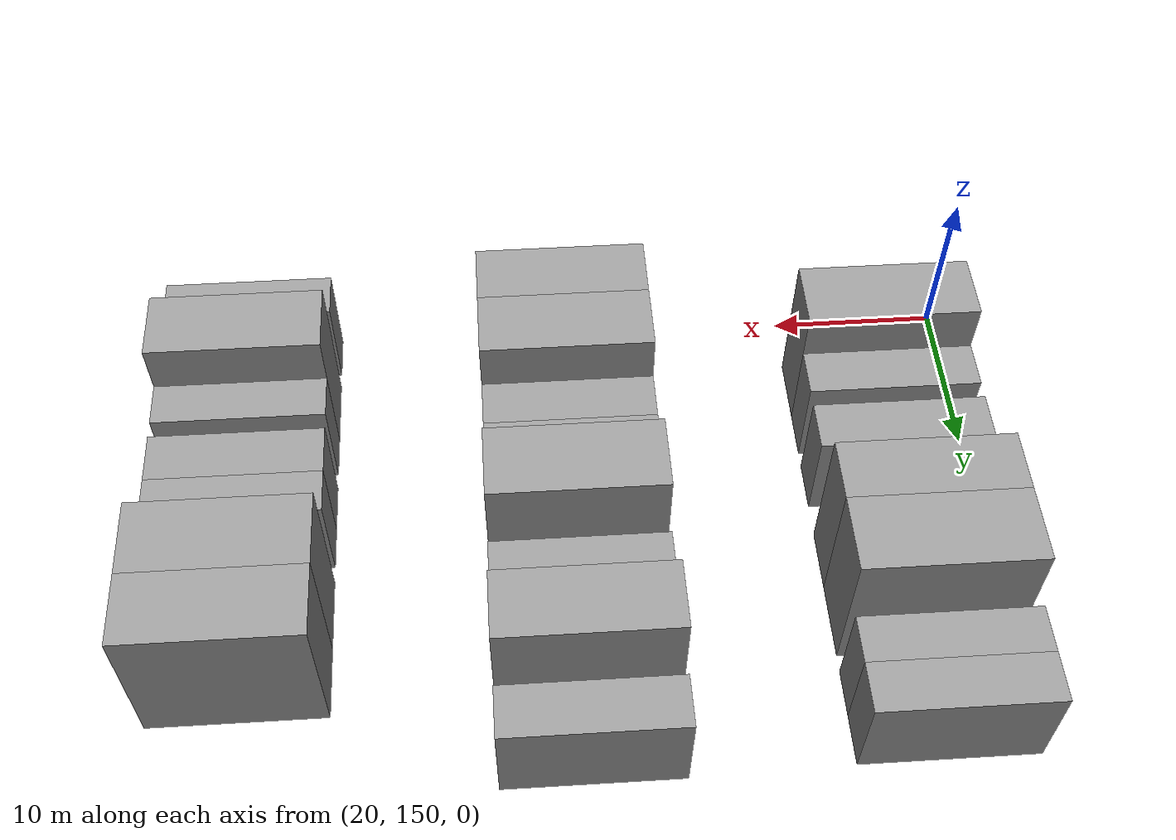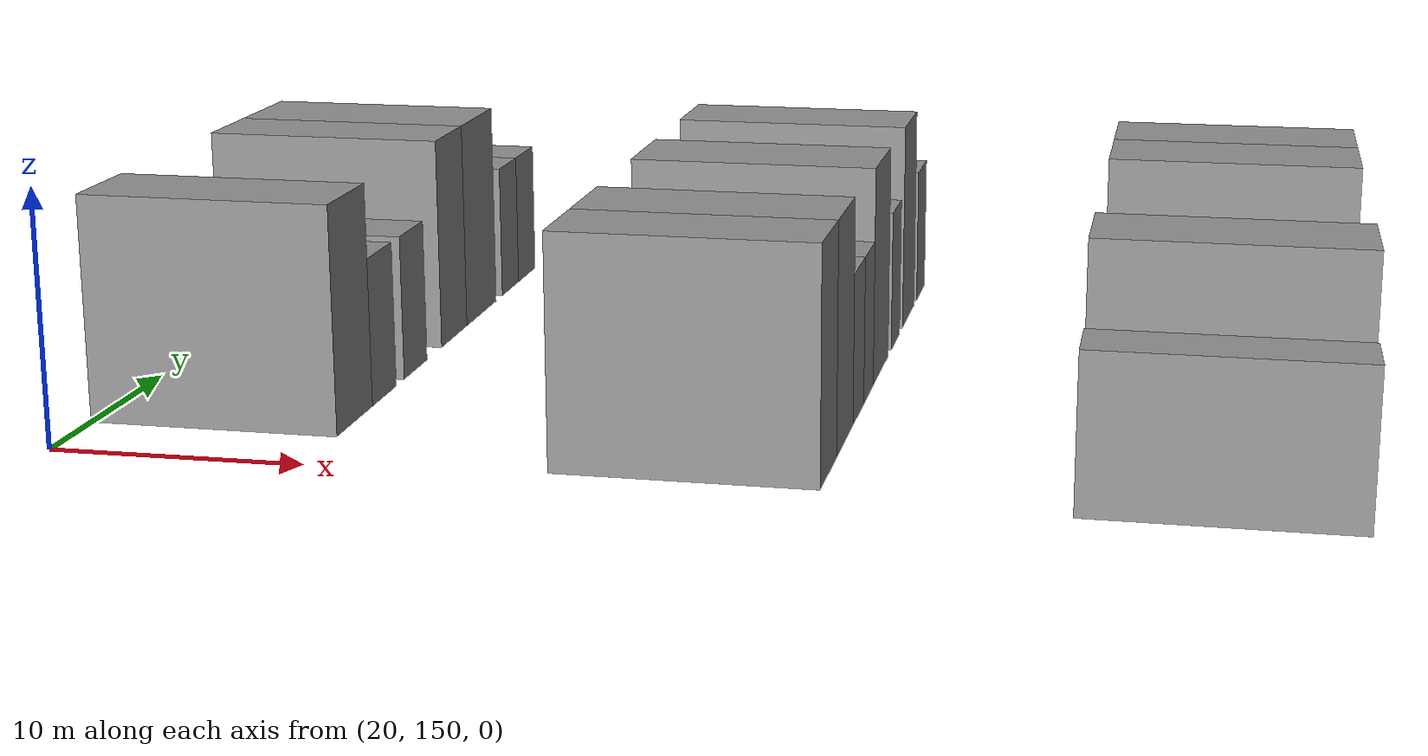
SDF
<sdf version="1.6">
 <world name="default">
  <model name="building_103">
   <static>1</static>
   <pose>25.0000 155.4526 0 0.000000 0.000000 0.000000</pose>
   <link name="link">
    <pose>0 0 4.50 0 0 0</pose>
    <collision name="collision"><geometry><box><size>10.0000 4.0135 9.0000</size></box></geometry></collision>
    <visual name="visual">
     <cast_shadows>0</cast_shadows>
     <geometry><box><size>10.0000 4.0135 9.0000</size></box></geometry>
     <material>
      <script>
       <uri>model://grey_wall/materials/scripts</uri>
       <uri>model://grey_wall/materials/textures</uri>
       <name>vrc/grey_wall</name>
      </script>
     </material>
    </visual>
   </link>
  </model>
  <model name="building_104">
   <static>1</static>
   <pose>25.0000 158.8937 0 0.000000 0.000000 0.000000</pose>
   <link name="link">
    <pose>0 0 3.00 0 0 0</pose>
    <collision name="collision"><geometry><box><size>10.0000 2.8687 6.0000</size></box></geometry></collision>
    <visual name="visual">
     <cast_shadows>0</cast_shadows>
     <geometry><box><size>10.0000 2.8687 6.0000</size></box></geometry>
     <material>
      <script>
       <uri>model://grey_wall/materials/scripts</uri>
       <uri>model://grey_wall/materials/textures</uri>
       <name>vrc/grey_wall</name>
      </script>
     </material>
    </visual>
   </link>
  </model>
  <model name="building_105">
   <static>1</static>
   <pose>25.0000 162.8089 0 0.000000 0.000000 0.000000</pose>
   <link name="link">
    <pose>0 0 3.00 0 0 0</pose>
    <collision name="collision"><geometry><box><size>10.0000 2.9617 6.0000</size></box></geometry></collision>
    <visual name="visual">
     <cast_shadows>0</cast_shadows>
     <geometry><box><size>10.0000 2.9617 6.0000</size></box></geometry>
     <material>
      <script>
       <uri>model://grey_wall/materials/scripts</uri>
       <uri>model://grey_wall/materials/textures</uri>
       <name>vrc/grey_wall</name>
      </script>
     </material>
    </visual>
   </link>
  </model>
  <model name="building_106">
   <static>1</static>
   <pose>25.0000 168.0981 0 0.000000 0.000000 0.000000</pose>
   <link name="link">
    <pose>0 0 4.50 0 0 0</pose>
    <collision name="collision"><geometry><box><size>10.0000 3.6167 9.0000</size></box></geometry></collision>
    <visual name="visual">
     <cast_shadows>0</cast_shadows>
     <geometry><box><size>10.0000 3.6167 9.0000</size></box></geometry>
     <material>
      <script>
       <uri>model://grey_wall/materials/scripts</uri>
       <uri>model://grey_wall/materials/textures</uri>
       <name>vrc/grey_wall</name>
      </script>
     </material>
    </visual>
   </link>
  </model>
  <model name="building_107">
   <static>1</static>
   <pose>25.0000 172.1519 0 0.000000 0.000000 0.000000</pose>
   <link name="link">
    <pose>0 0 4.50 0 0 0</pose>
    <collision name="collision"><geometry><box><size>10.0000 4.4907 9.0000</size></box></geometry></collision>
    <visual name="visual">
     <cast_shadows>0</cast_shadows>
     <geometry><box><size>10.0000 4.4907 9.0000</size></box></geometry>
     <material>
      <script>
       <uri>model://grey_wall/materials/scripts</uri>
       <uri>model://grey_wall/materials/textures</uri>
       <name>vrc/grey_wall</name>
      </script>
     </material>
    </visual>
   </link>
  </model>
  <model name="building_108">
   <static>1</static>
   <pose>25.0000 176.7450 0 0.000000 0.000000 0.000000</pose>
   <link name="link">
    <pose>0 0 3.00 0 0 0</pose>
    <collision name="collision"><geometry><box><size>10.0000 2.6954 6.0000</size></box></geometry></collision>
    <visual name="visual">
     <cast_shadows>0</cast_shadows>
     <geometry><box><size>10.0000 2.6954 6.0000</size></box></geometry>
     <material>
      <script>
       <uri>model://grey_wall/materials/scripts</uri>
       <uri>model://grey_wall/materials/textures</uri>
       <name>vrc/grey_wall</name>
      </script>
     </material>
    </visual>
   </link>
  </model>
  <model name="building_109">
   <static>1</static>
   <pose>25.0000 179.5265 0 0.000000 0.000000 0.000000</pose>
   <link name="link">
    <pose>0 0 3.00 0 0 0</pose>
    <collision name="collision"><geometry><box><size>10.0000 2.8677 6.0000</size></box></geometry></collision>
    <visual name="visual">
     <cast_shadows>0</cast_shadows>
     <geometry><box><size>10.0000 2.8677 6.0000</size></box></geometry>
     <material>
      <script>
       <uri>model://grey_wall/materials/scripts</uri>
       <uri>model://grey_wall/materials/textures</uri>
       <name>vrc/grey_wall</name>
      </script>
     </material>
    </visual>
   </link>
  </model>
  <model name="building_221">
   <static>1</static>
   <pose>44.0000 152.6465 0 0.000000 0.000000 0.000000</pose>
   <link name="link">
    <pose>0 0 4.50 0 0 0</pose>
    <collision name="collision"><geometry><box><size>10.0000 3.7224 9.0000</size></box></geometry></collision>
    <visual name="visual">
     <cast_shadows>0</cast_shadows>
     <geometry><box><size>10.0000 3.7224 9.0000</size></box></geometry>
     <material>
      <script>
       <uri>model://grey_wall/materials/scripts</uri>
       <uri>model://grey_wall/materials/textures</uri>
       <name>vrc/grey_wall</name>
      </script>
     </material>
    </visual>
   </link>
  </model>
  <model name="building_222">
   <static>1</static>
   <pose>44.0000 156.5366 0 0.000000 0.000000 0.000000</pose>
   <link name="link">
    <pose>0 0 4.50 0 0 0</pose>
    <collision name="collision"><geometry><box><size>10.0000 4.0577 9.0000</size></box></geometry></collision>
    <visual name="visual">
     <cast_shadows>0</cast_shadows>
     <geometry><box><size>10.0000 4.0577 9.0000</size></box></geometry>
     <material>
      <script>
       <uri>model://grey_wall/materials/scripts</uri>
       <uri>model://grey_wall/materials/textures</uri>
       <name>vrc/grey_wall</name>
      </script>
     </material>
    </visual>
   </link>
  </model>
  <model name="building_223">
   <static>1</static>
   <pose>44.0000 159.9938 0 0.000000 0.000000 0.000000</pose>
   <link name="link">
    <pose>0 0 3.00 0 0 0</pose>
    <collision name="collision"><geometry><box><size>10.0000 2.8568 6.0000</size></box></geometry></collision>
    <visual name="visual">
     <cast_shadows>0</cast_shadows>
     <geometry><box><size>10.0000 2.8568 6.0000</size></box></geometry>
     <material>
      <script>
       <uri>model://grey_wall/materials/scripts</uri>
       <uri>model://grey_wall/materials/textures</uri>
       <name>vrc/grey_wall</name>
      </script>
     </material>
    </visual>
   </link>
  </model>
  <model name="building_224">
   <static>1</static>
   <pose>44.0000 162.7529 0 0.000000 0.000000 0.000000</pose>
   <link name="link">
    <pose>0 0 3.00 0 0 0</pose>
    <collision name="collision"><geometry><box><size>10.0000 2.6615 6.0000</size></box></geometry></collision>
    <visual name="visual">
     <cast_shadows>0</cast_shadows>
     <geometry><box><size>10.0000 2.6615 6.0000</size></box></geometry>
     <material>
      <script>
       <uri>model://grey_wall/materials/scripts</uri>
       <uri>model://grey_wall/materials/textures</uri>
       <name>vrc/grey_wall</name>
      </script>
     </material>
    </visual>
   </link>
  </model>
  <model name="building_225">
   <static>1</static>
   <pose>44.0000 166.2893 0 0.000000 0.000000 0.000000</pose>
   <link name="link">
    <pose>0 0 4.50 0 0 0</pose>
    <collision name="collision"><geometry><box><size>10.0000 4.4113 9.0000</size></box></geometry></collision>
    <visual name="visual">
     <cast_shadows>0</cast_shadows>
     <geometry><box><size>10.0000 4.4113 9.0000</size></box></geometry>
     <material>
      <script>
       <uri>model://grey_wall/materials/scripts</uri>
       <uri>model://grey_wall/materials/textures</uri>
       <name>vrc/grey_wall</name>
      </script>
     </material>
    </visual>
   </link>
  </model>
  <model name="building_226">
   <static>1</static>
   <pose>44.0000 170.8499 0 0.000000 0.000000 0.000000</pose>
   <link name="link">
    <pose>0 0 3.00 0 0 0</pose>
    <collision name="collision"><geometry><box><size>10.0000 2.7099 6.0000</size></box></geometry></collision>
    <visual name="visual">
     <cast_shadows>0</cast_shadows>
     <geometry><box><size>10.0000 2.7099 6.0000</size></box></geometry>
     <material>
      <script>
       <uri>model://grey_wall/materials/scripts</uri>
       <uri>model://grey_wall/materials/textures</uri>
       <name>vrc/grey_wall</name>
      </script>
     </material>
    </visual>
   </link>
  </model>
  <model name="building_227">
   <static>1</static>
   <pose>44.0000 175.2017 0 0.000000 0.000000 0.000000</pose>
   <link name="link">
    <pose>0 0 4.50 0 0 0</pose>
    <collision name="collision"><geometry><box><size>10.0000 3.9937 9.0000</size></box></geometry></collision>
    <visual name="visual">
     <cast_shadows>0</cast_shadows>
     <geometry><box><size>10.0000 3.9937 9.0000</size></box></geometry>
     <material>
      <script>
       <uri>model://grey_wall/materials/scripts</uri>
       <uri>model://grey_wall/materials/textures</uri>
       <name>vrc/grey_wall</name>
      </script>
     </material>
    </visual>
   </link>
  </model>
  <model name="building_228">
   <static>1</static>
   <pose>44.0000 179.6846 0 0.000000 0.000000 0.000000</pose>
   <link name="link">
    <pose>0 0 3.00 0 0 0</pose>
    <collision name="collision"><geometry><box><size>10.0000 2.9720 6.0000</size></box></geometry></collision>
    <visual name="visual">
     <cast_shadows>0</cast_shadows>
     <geometry><box><size>10.0000 2.9720 6.0000</size></box></geometry>
     <material>
      <script>
       <uri>model://grey_wall/materials/scripts</uri>
       <uri>model://grey_wall/materials/textures</uri>
       <name>vrc/grey_wall</name>
      </script>
     </material>
    </visual>
   </link>
  </model>
  <model name="building_335">
   <static>1</static>
   <pose>63.0000 150.9326 0 0.000000 0.000000 0.000000</pose>
   <link name="link">
    <pose>0 0 3.00 0 0 0</pose>
    <collision name="collision"><geometry><box><size>10.0000 2.7823 6.0000</size></box></geometry></collision>
    <visual name="visual">
     <cast_shadows>0</cast_shadows>
     <geometry><box><size>10.0000 2.7823 6.0000</size></box></geometry>
     <material>
      <script>
       <uri>model://grey_wall/materials/scripts</uri>
       <uri>model://grey_wall/materials/textures</uri>
       <name>vrc/grey_wall</name>
      </script>
     </material>
    </visual>
   </link>
  </model>
  <model name="building_336">
   <static>1</static>
   <pose>63.0000 155.4183 0 0.000000 0.000000 0.000000</pose>
   <link name="link">
    <pose>0 0 4.50 0 0 0</pose>
    <collision name="collision"><geometry><box><size>10.0000 4.1892 9.0000</size></box></geometry></collision>
    <visual name="visual">
     <cast_shadows>0</cast_shadows>
     <geometry><box><size>10.0000 4.1892 9.0000</size></box></geometry>
     <material>
      <script>
       <uri>model://grey_wall/materials/scripts</uri>
       <uri>model://grey_wall/materials/textures</uri>
       <name>vrc/grey_wall</name>
      </script>
     </material>
    </visual>
   </link>
  </model>
  <model name="building_337">
   <static>1</static>
   <pose>63.0000 158.8460 0 0.000000 0.000000 0.000000</pose>
   <link name="link">
    <pose>0 0 3.00 0 0 0</pose>
    <collision name="collision"><geometry><box><size>10.0000 2.6661 6.0000</size></box></geometry></collision>
    <visual name="visual">
     <cast_shadows>0</cast_shadows>
     <geometry><box><size>10.0000 2.6661 6.0000</size></box></geometry>
     <material>
      <script>
       <uri>model://grey_wall/materials/scripts</uri>
       <uri>model://grey_wall/materials/textures</uri>
       <name>vrc/grey_wall</name>
      </script>
     </material>
    </visual>
   </link>
  </model>
  <model name="building_338">
   <static>1</static>
   <pose>63.0000 162.6777 0 0.000000 0.000000 0.000000</pose>
   <link name="link">
    <pose>0 0 3.00 0 0 0</pose>
    <collision name="collision"><geometry><box><size>10.0000 2.9974 6.0000</size></box></geometry></collision>
    <visual name="visual">
     <cast_shadows>0</cast_shadows>
     <geometry><box><size>10.0000 2.9974 6.0000</size></box></geometry>
     <material>
      <script>
       <uri>model://grey_wall/materials/scripts</uri>
       <uri>model://grey_wall/materials/textures</uri>
       <name>vrc/grey_wall</name>
      </script>
     </material>
    </visual>
   </link>
  </model>
  <model name="building_339">
   <static>1</static>
   <pose>63.0000 165.4919 0 0.000000 0.000000 0.000000</pose>
   <link name="link">
    <pose>0 0 3.00 0 0 0</pose>
    <collision name="collision"><geometry><box><size>10.0000 2.6309 6.0000</size></box></geometry></collision>
    <visual name="visual">
     <cast_shadows>0</cast_shadows>
     <geometry><box><size>10.0000 2.6309 6.0000</size></box></geometry>
     <material>
      <script>
       <uri>model://grey_wall/materials/scripts</uri>
       <uri>model://grey_wall/materials/textures</uri>
       <name>vrc/grey_wall</name>
      </script>
     </material>
    </visual>
   </link>
  </model>
  <model name="building_340">
   <static>1</static>
   <pose>63.0000 169.9985 0 0.000000 0.000000 0.000000</pose>
   <link name="link">
    <pose>0 0 4.50 0 0 0</pose>
    <collision name="collision"><geometry><box><size>10.0000 4.3822 9.0000</size></box></geometry></collision>
    <visual name="visual">
     <cast_shadows>0</cast_shadows>
     <geometry><box><size>10.0000 4.3822 9.0000</size></box></geometry>
     <material>
      <script>
       <uri>model://grey_wall/materials/scripts</uri>
       <uri>model://grey_wall/materials/textures</uri>
       <name>vrc/grey_wall</name>
      </script>
     </material>
    </visual>
   </link>
  </model>
  <model name="building_341">
   <static>1</static>
   <pose>63.0000 174.2950 0 0.000000 0.000000 0.000000</pose>
   <link name="link">
    <pose>0 0 4.50 0 0 0</pose>
    <collision name="collision"><geometry><box><size>10.0000 4.2108 9.0000</size></box></geometry></collision>
    <visual name="visual">
     <cast_shadows>0</cast_shadows>
     <geometry><box><size>10.0000 4.2108 9.0000</size></box></geometry>
     <material>
      <script>
       <uri>model://grey_wall/materials/scripts</uri>
       <uri>model://grey_wall/materials/textures</uri>
       <name>vrc/grey_wall</name>
      </script>
     </material>
    </visual>
   </link>
  </model>
 </world>
</sdf>
